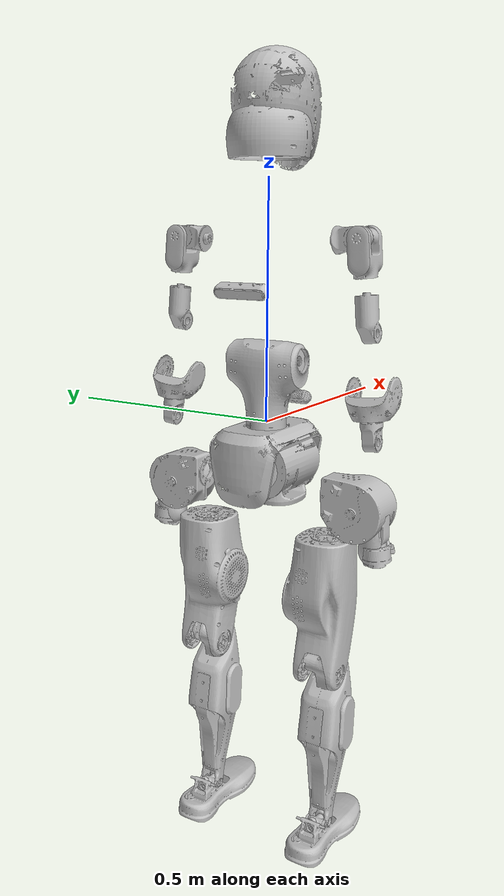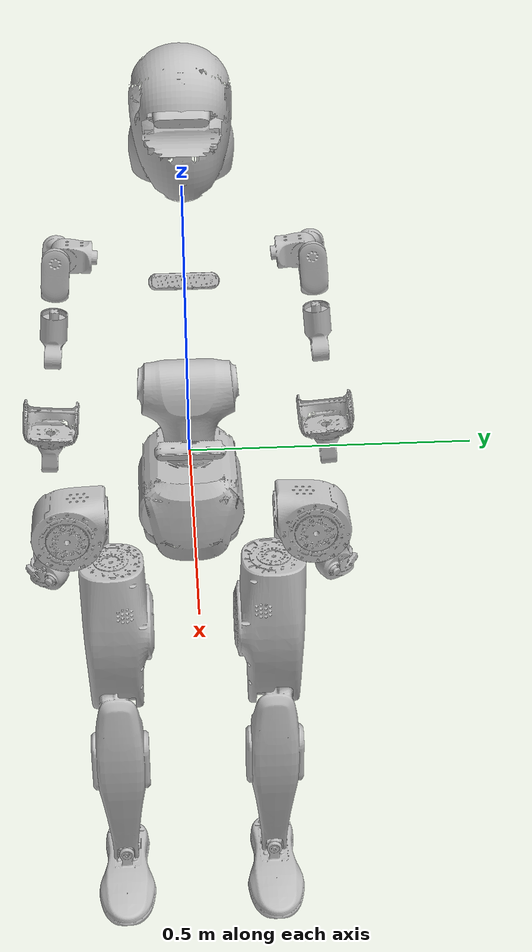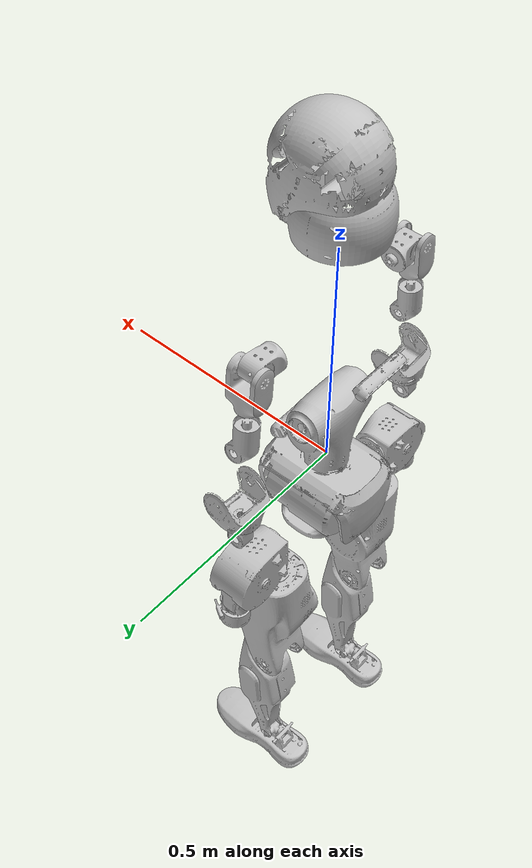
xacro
<?xml version='1.0' encoding='utf-8'?>
<robot name="tiangong2pro_urdf" xmlns:xacro="http://wiki.ros.org/xacro">
  <link name="pelvis">
    <inertial>
      <origin xyz="-0.000979 0.00068 -0.076922" rpy="0 0 0" />
      <mass value="5.639" />
      <inertia ixx="0.018304" ixy="-0.004328" ixz="6.1e-05" iyy="0.023292" iyz="6e-05" izz="0.024244" />
    </inertial>
    <visual>
      <origin xyz="0 0 0" rpy="0 0 0" />
      <geometry>
        <mesh filename="package://tiangong2pro_urdf/meshes/pelvis.STL" />
      </geometry>
      <material name="">
        <color rgba="0.752941176470588 0.752941176470588 0.752941176470588 1" />
      </material>
    </visual>
    <collision>
      <origin xyz="0 0 0" rpy="0 0 0" />
      <geometry>
        <mesh filename="package://tiangong2pro_urdf/meshes/pelvis.STL" />
      </geometry>
    </collision>
  </link>
  <link name="hip_roll_l_link">
    <inertial>
      <origin xyz="-0.001848 0.055849 -0.036017" rpy="0 0 0" />
      <mass value="0.672983" />
      <inertia ixx="0.00102" ixy="-7e-05" ixz="3.8e-05" iyy="0.003221" iyz="0.000281" izz="0.003272" />
    </inertial>
    <visual>
      <origin xyz="0 0 0" rpy="0 0 0" />
      <geometry>
        <mesh filename="package://tiangong2pro_urdf/meshes/hip_roll_l_link.STL" />
      </geometry>
      <material name="">
        <color rgba="0.752941176470588 0.752941176470588 0.752941176470588 1" />
      </material>
    </visual>
    <collision>
      <origin xyz="0 0 0" rpy="0 0 0" />
      <geometry>
        <mesh filename="package://tiangong2pro_urdf/meshes/hip_roll_l_link.STL" />
      </geometry>
    </collision>
  </link>
  <joint name="hip_roll_l_joint" type="revolute">
    <origin xyz="0 0.028 -0.0857" rpy="0 0 0" />
    <parent link="pelvis" />
    <child link="hip_roll_l_link" />
    <axis xyz="1 0 0" />
    <limit lower="-0.7853981633974483" upper="0.7853981633974483" effort="235.0" velocity="16.755160819145562" />
  </joint>
  <link name="hip_pitch_l_link">
    <inertial>
      <origin xyz="0.001081 -8.8e-05 -0.013133" rpy="0 0 0" />
      <mass value="3.951912" />
      <inertia ixx="0.010841" ixy="-2.7e-05" ixz="0.000234" iyy="0.015597" iyz="0.000123" izz="0.00934" />
    </inertial>
    <visual>
      <origin xyz="0 0 0" rpy="0 0 0" />
      <geometry>
        <mesh filename="package://tiangong2pro_urdf/meshes/hip_pitch_l_link.STL" />
      </geometry>
      <material name="">
        <color rgba="0.752941176470588 0.752941176470588 0.752941176470588 1" />
      </material>
    </visual>
    <collision>
      <origin xyz="0 0 0" rpy="0 0 0" />
      <geometry>
        <mesh filename="package://tiangong2pro_urdf/meshes/hip_pitch_l_link.STL" />
      </geometry>
    </collision>
  </link>
  <joint name="hip_pitch_l_joint" type="revolute">
    <origin xyz="0 0.122 -0.046" rpy="0 0 0" />
    <parent link="hip_roll_l_link" />
    <child link="hip_pitch_l_link" />
    <axis xyz="0 1 0" />
    <limit lower="-2.792526803190927" upper="2.0943951023931953" effort="330.0" velocity="15.707963267948966" />
  </joint>
  <link name="hip_yaw_l_link">
    <inertial>
      <origin xyz="0.004102 -0.006542 -0.121068" rpy="0 0 0" />
      <mass value="6.670795" />
      <inertia ixx="0.049573" ixy="-0.000228" ixz="-4.4e-05" iyy="0.053307" iyz="-0.001401" izz="0.017924" />
    </inertial>
    <visual>
      <origin xyz="0 0 0" rpy="0 0 0" />
      <geometry>
        <mesh filename="package://tiangong2pro_urdf/meshes/hip_yaw_l_link.STL" />
      </geometry>
      <material name="">
        <color rgba="0.752941176470588 0.752941176470588 0.752941176470588 1" />
      </material>
    </visual>
    <collision>
      <origin xyz="0 0 0" rpy="0 0 0" />
      <geometry>
        <mesh filename="package://tiangong2pro_urdf/meshes/hip_yaw_l_link.STL" />
      </geometry>
    </collision>
  </link>
  <joint name="hip_yaw_l_joint" type="revolute">
    <origin xyz="0 -0.00015 -0.0987" rpy="0 0 0" />
    <parent link="hip_pitch_l_link" />
    <child link="hip_yaw_l_link" />
    <axis xyz="0 0 1" />
    <limit lower="-1.0471975511965976" upper="1.0471975511965976" effort="235.0" velocity="16.755160819145562" />
  </joint>
  <link name="knee_pitch_l_link">
    <inertial>
      <origin xyz="0.00018 0.001915 -0.178653" rpy="0 0 0" />
      <mass value="2.312685" />
      <inertia ixx="0.030244" ixy="-1e-05" ixz="-0.002398" iyy="0.03091" iyz="-0.000689" izz="0.002922" />
    </inertial>
    <visual>
      <origin xyz="0 0 0" rpy="0 0 0" />
      <geometry>
        <mesh filename="package://tiangong2pro_urdf/meshes/knee_pitch_l_link.STL" />
      </geometry>
      <material name="">
        <color rgba="0.752941176470588 0.752941176470588 0.752941176470588 1" />
      </material>
    </visual>
    <collision>
      <origin xyz="0 0 0" rpy="0 0 0" />
      <geometry>
        <mesh filename="package://tiangong2pro_urdf/meshes/knee_pitch_l_link.STL" />
      </geometry>
    </collision>
  </link>
  <joint name="knee_pitch_l_joint" type="revolute">
    <origin xyz="0 0.00010715 -0.3013" rpy="0 0 0" />
    <parent link="hip_yaw_l_link" />
    <child link="knee_pitch_l_link" />
    <axis xyz="0 1 0" />
    <limit lower="0.0" upper="2.3911010752322315" effort="330.0" velocity="15.707963267948966" />
  </joint>
  <link name="ankle_pitch_l_link">
    <inertial>
      <origin xyz="0.0 0.0 0.0" rpy="0 0 0" />
      <mass value="0.111609" />
      <inertia ixx="1.8e-05" ixy="0.0" ixz="0.0" iyy="1.8e-05" iyz="0.0" izz="3.2e-05" />
    </inertial>
    <visual>
      <origin xyz="0 0 0" rpy="0 0 0" />
      <geometry>
        <mesh filename="package://tiangong2pro_urdf/meshes/ankle_pitch_l_link.STL" />
      </geometry>
      <material name="">
        <color rgba="0.752941176470588 0.752941176470588 0.752941176470588 1" />
      </material>
    </visual>
    <collision>
      <origin xyz="0 0 0" rpy="0 0 0" />
      <geometry>
        <mesh filename="package://tiangong2pro_urdf/meshes/ankle_pitch_l_link.STL" />
      </geometry>
    </collision>
  </link>
  <joint name="ankle_pitch_l_joint" type="revolute">
    <origin xyz="0 0 -0.4" rpy="0 0 0" />
    <parent link="knee_pitch_l_link" />
    <child link="ankle_pitch_l_link" />
    <axis xyz="0 1 0" />
    <limit lower="-1.2217304763960306" upper="0.5235987755982988" effort="55.0" velocity="14.137166941154069" />
  </joint>
  <link name="ankle_roll_l_link">
    <inertial>
      <origin xyz="0.021235 0.0 -0.032883" rpy="0 0 0" />
      <mass value="1.017381" />
      <inertia ixx="0.001028" ixy="0.0" ixz="0.000622" iyy="0.006055" iyz="0.0" izz="0.00624" />
    </inertial>
    <visual>
      <origin xyz="0 0 0" rpy="0 0 0" />
      <geometry>
        <mesh filename="package://tiangong2pro_urdf/meshes/ankle_roll_l_link.STL" />
      </geometry>
      <material name="">
        <color rgba="0.752941176470588 0.752941176470588 0.752941176470588 1" />
      </material>
    </visual>
    <collision>
      <origin xyz="0 0 0" rpy="0 0 0" />
      <geometry>
        <mesh filename="package://tiangong2pro_urdf/meshes/ankle_roll_l_link.STL" />
      </geometry>
    </collision>
  </link>
  <joint name="ankle_roll_l_joint" type="revolute">
    <origin xyz="0 0 0" rpy="0 0 0" />
    <parent link="ankle_pitch_l_link" />
    <child link="ankle_roll_l_link" />
    <axis xyz="1 0 0" />
    <limit lower="-0.5235987755982988" upper="0.5235987755982988" effort="55.0" velocity="14.137166941154069" />
  </joint>
  <link name="hip_roll_r_link">
    <inertial>
      <origin xyz="-0.001848 -0.055849 -0.036017" rpy="0 0 0" />
      <mass value="0.672983" />
      <inertia ixx="0.00102" ixy="7e-05" ixz="3.8e-05" iyy="0.003221" iyz="-0.000281" izz="0.003272" />
    </inertial>
    <visual>
      <origin xyz="0 0 0" rpy="0 0 0" />
      <geometry>
        <mesh filename="package://tiangong2pro_urdf/meshes/hip_roll_r_link.STL" />
      </geometry>
      <material name="">
        <color rgba="0.752941176470588 0.752941176470588 0.752941176470588 1" />
      </material>
    </visual>
    <collision>
      <origin xyz="0 0 0" rpy="0 0 0" />
      <geometry>
        <mesh filename="package://tiangong2pro_urdf/meshes/hip_roll_r_link.STL" />
      </geometry>
    </collision>
  </link>
  <joint name="hip_roll_r_joint" type="revolute">
    <origin xyz="0 -0.028 -0.0857" rpy="0 0 0" />
    <parent link="pelvis" />
    <child link="hip_roll_r_link" />
    <axis xyz="1 0 0" />
    <limit lower="-0.7853981633974483" upper="0.7853981633974483" effort="235.0" velocity="16.755160819145562" />
  </joint>
  <link name="hip_pitch_r_link">
    <inertial>
      <origin xyz="0.001081 8.8e-05 -0.013133" rpy="0 0 0" />
      <mass value="3.951912" />
      <inertia ixx="0.010841" ixy="2.7e-05" ixz="0.000234" iyy="0.015597" iyz="-0.000123" izz="0.00934" />
    </inertial>
    <visual>
      <origin xyz="0 0 0" rpy="0 0 0" />
      <geometry>
        <mesh filename="package://tiangong2pro_urdf/meshes/hip_pitch_r_link.STL" />
      </geometry>
      <material name="">
        <color rgba="0.752941176470588 0.752941176470588 0.752941176470588 1" />
      </material>
    </visual>
    <collision>
      <origin xyz="0 0 0" rpy="0 0 0" />
      <geometry>
        <mesh filename="package://tiangong2pro_urdf/meshes/hip_pitch_r_link.STL" />
      </geometry>
    </collision>
  </link>
  <joint name="hip_pitch_r_joint" type="revolute">
    <origin xyz="0 -0.122 -0.046" rpy="0 0 0" />
    <parent link="hip_roll_r_link" />
    <child link="hip_pitch_r_link" />
    <axis xyz="0 1 0" />
    <limit lower="-2.792526803190927" upper="2.0943951023931953" effort="330.0" velocity="15.707963267948966" />
  </joint>
  <link name="hip_yaw_r_link">
    <inertial>
      <origin xyz="0.004102 0.006542 -0.121068" rpy="0 0 0" />
      <mass value="6.670795" />
      <inertia ixx="0.049573" ixy="0.000228" ixz="-4.4e-05" iyy="0.053307" iyz="0.001401" izz="0.017924" />
    </inertial>
    <visual>
      <origin xyz="0 0 0" rpy="0 0 0" />
      <geometry>
        <mesh filename="package://tiangong2pro_urdf/meshes/hip_yaw_r_link.STL" />
      </geometry>
      <material name="">
        <color rgba="0.752941176470588 0.752941176470588 0.752941176470588 1" />
      </material>
    </visual>
    <collision>
      <origin xyz="0 0 0" rpy="0 0 0" />
      <geometry>
        <mesh filename="package://tiangong2pro_urdf/meshes/hip_yaw_r_link.STL" />
      </geometry>
    </collision>
  </link>
  <joint name="hip_yaw_r_joint" type="revolute">
    <origin xyz="0 0 -0.0987" rpy="0 0 0" />
    <parent link="hip_pitch_r_link" />
    <child link="hip_yaw_r_link" />
    <axis xyz="0 0 1" />
    <limit lower="-1.0471975511965976" upper="1.0471975511965976" effort="235.0" velocity="16.755160819145562" />
  </joint>
  <link name="knee_pitch_r_link">
    <inertial>
      <origin xyz="0.00018 -0.001915 -0.178653" rpy="0 0 0" />
      <mass value="2.312685" />
      <inertia ixx="0.030244" ixy="1e-05" ixz="-0.002398" iyy="0.03091" iyz="0.000689" izz="0.002922" />
    </inertial>
    <visual>
      <origin xyz="0 0 0" rpy="0 0 0" />
      <geometry>
        <mesh filename="package://tiangong2pro_urdf/meshes/knee_pitch_r_link.STL" />
      </geometry>
      <material name="">
        <color rgba="0.752941176470588 0.752941176470588 0.752941176470588 1" />
      </material>
    </visual>
    <collision>
      <origin xyz="0 0 0" rpy="0 0 0" />
      <geometry>
        <mesh filename="package://tiangong2pro_urdf/meshes/knee_pitch_r_link.STL" />
      </geometry>
    </collision>
  </link>
  <joint name="knee_pitch_r_joint" type="revolute">
    <origin xyz="0 9.9938E-05 -0.3013" rpy="0 0 0" />
    <parent link="hip_yaw_r_link" />
    <child link="knee_pitch_r_link" />
    <axis xyz="0 1 0" />
    <limit lower="0.0" upper="2.3911010752322315" effort="330.0" velocity="15.707963267948966" />
  </joint>
  <link name="ankle_pitch_r_link">
    <inertial>
      <origin xyz="0.0 0.0 0.0" rpy="0 0 0" />
      <mass value="0.111609" />
      <inertia ixx="1.8e-05" ixy="0.0" ixz="0.0" iyy="1.8e-05" iyz="0.0" izz="3.2e-05" />
    </inertial>
    <visual>
      <origin xyz="0 0 0" rpy="0 0 0" />
      <geometry>
        <mesh filename="package://tiangong2pro_urdf/meshes/ankle_pitch_r_link.STL" />
      </geometry>
      <material name="">
        <color rgba="0.752941176470588 0.752941176470588 0.752941176470588 1" />
      </material>
    </visual>
    <collision>
      <origin xyz="0 0 0" rpy="0 0 0" />
      <geometry>
        <mesh filename="package://tiangong2pro_urdf/meshes/ankle_pitch_r_link.STL" />
      </geometry>
    </collision>
  </link>
  <joint name="ankle_pitch_r_joint" type="revolute">
    <origin xyz="0 0.00099989 -0.4" rpy="0 0 0" />
    <parent link="knee_pitch_r_link" />
    <child link="ankle_pitch_r_link" />
    <axis xyz="0 1 0" />
    <limit lower="-1.2217304763960306" upper="0.5235987755982988" effort="55.0" velocity="14.137166941154069" />
  </joint>
  <link name="ankle_roll_r_link">
    <inertial>
      <origin xyz="0.021235 0.0 -0.032883" rpy="0 0 0" />
      <mass value="1.017381" />
      <inertia ixx="0.001028" ixy="0.0" ixz="0.000622" iyy="0.006055" iyz="0.0" izz="0.00624" />
    </inertial>
    <visual>
      <origin xyz="0 0 0" rpy="0 0 0" />
      <geometry>
        <mesh filename="package://tiangong2pro_urdf/meshes/ankle_roll_r_link.STL" />
      </geometry>
      <material name="">
        <color rgba="0.752941176470588 0.752941176470588 0.752941176470588 1" />
      </material>
    </visual>
    <collision>
      <origin xyz="0 0 0" rpy="0 0 0" />
      <geometry>
        <mesh filename="package://tiangong2pro_urdf/meshes/ankle_roll_r_link.STL" />
      </geometry>
    </collision>
  </link>
  <joint name="ankle_roll_r_joint" type="revolute">
    <origin xyz="0 0 0" rpy="0 0 0" />
    <parent link="ankle_pitch_r_link" />
    <child link="ankle_roll_r_link" />
    <axis xyz="1 0 0" />
    <limit lower="-0.5235987755982988" upper="0.5235987755982988" effort="55.0" velocity="14.137166941154069" />
  </joint>
  <link name="waist_yaw_link">
    <inertial>
      <origin xyz="-0.000568 0.00056 0.231488" rpy="0 0 0" />
      <mass value="22.0" />
      <inertia ixx="0.429034" ixy="0.000293" ixz="-0.003462" iyy="0.379055" iyz="0.000237" izz="0.177142" />
    </inertial>
    <visual>
      <origin xyz="0 0 0" rpy="0 0 0" />
      <geometry>
        <mesh filename="package://tiangong2pro_urdf/meshes/waist_yaw_link.STL" />
      </geometry>
      <material name="">
        <color rgba="0.752941176470588 0.752941176470588 0.752941176470588 1" />
      </material>
    </visual>
    <collision>
      <origin xyz="0 0 0" rpy="0 0 0" />
      <geometry>
        <mesh filename="package://tiangong2pro_urdf/meshes/waist_yaw_link.STL" />
      </geometry>
    </collision>
  </link>
  <joint name="body_yaw_joint" type="revolute">
    <origin xyz="0 0 0" rpy="0 0 0" />
    <parent link="pelvis" />
    <child link="waist_yaw_link" />
    <axis xyz="0 0 1" />
    <limit lower="-2.9670597283903604" upper="3.141592653589793" effort="91.0" velocity="9.215338450530059" />
  </joint>
  <link name="head_yaw_link">
    <inertial>
      <origin xyz="-0.000202 0.000454 0.007248" rpy="0 0 0" />
      <mass value="0.088397" />
      <inertia ixx="9.5e-05" ixy="-1e-06" ixz="-3e-06" iyy="7.6e-05" iyz="-3e-06" izz="0.000106" />
    </inertial>
    <visual>
      <origin xyz="0 0 0" rpy="0 0 0" />
      <geometry>
        <mesh filename="package://tiangong2pro_urdf/meshes/head_yaw_link.STL" />
      </geometry>
      <material name="">
        <color rgba="0.752941176470588 0.752941176470588 0.752941176470588 1" />
      </material>
    </visual>
    <collision>
      <origin xyz="0 0 0" rpy="0 0 0" />
      <geometry>
        <mesh filename="package://tiangong2pro_urdf/meshes/head_yaw_link.STL" />
      </geometry>
    </collision>
  </link>
  <joint name="head_yaw_joint" type="revolute">
    <origin xyz="-0.002 0 0.56508" rpy="0 0 0" />
    <parent link="waist_yaw_link" />
    <child link="head_yaw_link" />
    <axis xyz="0 0 1" />
    <limit lower="-1.5707963267948966" upper="1.5707963267948966" effort="6.3" velocity="7.5398223686155035" />
  </joint>
  <link name="head_pitch_link">
    <inertial>
      <origin xyz="-0.000274 0.004118 2.3e-05" rpy="0 0 0" />
      <mass value="0.23046" />
      <inertia ixx="9.2e-05" ixy="1e-06" ixz="-1e-06" iyy="5.4e-05" iyz="0.0" izz="9.5e-05" />
    </inertial>
    <visual>
      <origin xyz="0 0 0" rpy="0 0 0" />
      <geometry>
        <mesh filename="package://tiangong2pro_urdf/meshes/head_pitch_link.STL" />
      </geometry>
      <material name="">
        <color rgba="0.752941176470588 0.752941176470588 0.752941176470588 1" />
      </material>
    </visual>
    <collision>
      <origin xyz="0 0 0" rpy="0 0 0" />
      <geometry>
        <mesh filename="package://tiangong2pro_urdf/meshes/head_pitch_link.STL" />
      </geometry>
    </collision>
  </link>
  <joint name="head_pitch_joint" type="revolute">
    <origin xyz="0.01455 0 0.0304" rpy="0 0.2618 0" />
    <parent link="head_yaw_link" />
    <child link="head_pitch_link" />
    <axis xyz="0 1 0" />
    <limit lower="-0.4363323129985824" upper="0.4363323129985824" effort="6.3" velocity="7.5398223686155035" />
  </joint>
  <link name="head_roll_link">
    <inertial>
      <origin xyz="0.022467 0.001208 0.053952" rpy="0 0 0" />
      <mass value="0.844627" />
      <inertia ixx="0.00235" ixy="3.8e-05" ixz="0.000436" iyy="0.003365" iyz="6e-06" izz="0.002875" />
    </inertial>
    <visual>
      <origin xyz="0 0 0" rpy="0 0 0" />
      <geometry>
        <mesh filename="package://tiangong2pro_urdf/meshes/head_roll_link.STL" />
      </geometry>
      <material name="">
        <color rgba="0.752941176470588 0.752941176470588 0.752941176470588 1" />
      </material>
    </visual>
    <collision>
      <origin xyz="0 0 0" rpy="0 0 0" />
      <geometry>
        <mesh filename="package://tiangong2pro_urdf/meshes/head_roll_link.STL" />
      </geometry>
    </collision>
  </link>
  <joint name="head_roll_joint" type="revolute">
    <origin xyz="0 0 0" rpy="0 0 0" />
    <parent link="head_pitch_link" />
    <child link="head_roll_link" />
    <axis xyz="1 0 0" />
    <limit lower="-0.4537856055185257" upper="0.4537856055185257" effort="6.3" velocity="7.5398223686155035" />
  </joint>
  <link name="camera_head_link">
    <inertial>
      <origin xyz="0.010986 -0.000307 -0.016475" rpy="0 0 0" />
      <mass value="0.1" />
      <inertia ixx="1.6e-05" ixy="0.0" ixz="0.0" iyy="8e-05" iyz="0.0" izz="7.7e-05" />
    </inertial>
    <visual>
      <origin xyz="0 0 0" rpy="0 0 0" />
      <geometry>
        <mesh filename="package://tiangong2pro_urdf/meshes/camera_head_link.STL" />
      </geometry>
      <material name="">
        <color rgba="0.752941176470588 0.752941176470588 0.752941176470588 1" />
      </material>
    </visual>
    <collision>
      <origin xyz="0 0 0" rpy="0 0 0" />
      <geometry>
        <mesh filename="package://tiangong2pro_urdf/meshes/camera_head_link.STL" />
      </geometry>
    </collision>
  </link>
  <joint name="camera_head_joint" type="fixed">
    <origin xyz="0.075191 0.010935 0.074436" rpy="-1.8326 0 -1.5708" />
    <parent link="head_roll_link" />
    <child link="camera_head_link" />
    <axis xyz="0 0 0" />
  </joint>
  <link name="shoulder_pitch_l_link">
    <inertial>
      <origin xyz="0.007494 0.064184 -2e-05" rpy="0 0 0" />
      <mass value="1.032698" />
      <inertia ixx="0.001025" ixy="-2.7e-05" ixz="-1e-06" iyy="0.001078" iyz="0.0" izz="0.001247" />
    </inertial>
    <visual>
      <origin xyz="0 0 0" rpy="0 0 0" />
      <geometry>
        <mesh filename="package://tiangong2pro_urdf/meshes/shoulder_pitch_l_link.STL" />
      </geometry>
      <material name="">
        <color rgba="0.752941176470588 0.752941176470588 0.752941176470588 1" />
      </material>
    </visual>
    <collision>
      <origin xyz="0 0 0" rpy="0 0 0" />
      <geometry>
        <mesh filename="package://tiangong2pro_urdf/meshes/shoulder_pitch_l_link.STL" />
      </geometry>
    </collision>
  </link>
  <joint name="shoulder_pitch_l_joint" type="revolute">
    <origin xyz="0 0.1444 0.37712" rpy="0.087266 0 0" />
    <parent link="waist_yaw_link" />
    <child link="shoulder_pitch_l_link" />
    <axis xyz="0 1 0" />
    <limit lower="-2.9670597283903604" upper="2.9670597283903604" effort="91.0" velocity="9.215338450530059" />
  </joint>
  <link name="shoulder_roll_l_link">
    <inertial>
      <origin xyz="0.002389 0.002259 -0.048236" rpy="0 0 0" />
      <mass value="0.440997" />
      <inertia ixx="0.001001" ixy="-4e-06" ixz="-2.5e-05" iyy="0.001313" iyz="-1.4e-05" izz="0.000911" />
    </inertial>
    <visual>
      <origin xyz="0 0 0" rpy="0 0 0" />
      <geometry>
        <mesh filename="package://tiangong2pro_urdf/meshes/shoulder_roll_l_link.STL" />
      </geometry>
      <material name="">
        <color rgba="0.752941176470588 0.752941176470588 0.752941176470588 1" />
      </material>
    </visual>
    <collision>
      <origin xyz="0 0 0" rpy="0 0 0" />
      <geometry>
        <mesh filename="package://tiangong2pro_urdf/meshes/shoulder_roll_l_link.STL" />
      </geometry>
    </collision>
  </link>
  <joint name="shoulder_roll_l_joint" type="revolute">
    <origin xyz="0 0.068 0" rpy="0 0 0" />
    <parent link="shoulder_pitch_l_link" />
    <child link="shoulder_roll_l_link" />
    <axis xyz="1 0 0" />
    <limit lower="-0.2617993877991494" upper="2.6179938779914944" effort="95.0" velocity="3.979350694547071" />
  </joint>
  <link name="shoulder_yaw_l_link">
    <inertial>
      <origin xyz="0.008319 0.002686 -0.112525" rpy="0 0 0" />
      <mass value="1.365033" />
      <inertia ixx="0.009637" ixy="-5.7e-05" ixz="0.00095" iyy="0.0096" iyz="0.000339" izz="0.001331" />
    </inertial>
    <visual>
      <origin xyz="0 0 0" rpy="0 0 0" />
      <geometry>
        <mesh filename="package://tiangong2pro_urdf/meshes/shoulder_yaw_l_link.STL" />
      </geometry>
      <material name="">
        <color rgba="0.752941176470588 0.752941176470588 0.752941176470588 1" />
      </material>
    </visual>
    <collision>
      <origin xyz="0 0 0" rpy="0 0 0" />
      <geometry>
        <mesh filename="package://tiangong2pro_urdf/meshes/shoulder_yaw_l_link.STL" />
      </geometry>
    </collision>
  </link>
  <joint name="shoulder_yaw_l_joint" type="revolute">
    <origin xyz="0 0 -0.1025" rpy="0 0 0" />
    <parent link="shoulder_roll_l_link" />
    <child link="shoulder_yaw_l_link" />
    <axis xyz="0 0 1" />
    <limit lower="-2.9670597283903604" upper="2.9670597283903604" effort="35.0" velocity="5.235987755982989" />
  </joint>
  <link name="elbow_pitch_l_link">
    <inertial>
      <origin xyz="-0.014694 -7.2e-05 -0.026081" rpy="0 0 0" />
      <mass value="0.246311" />
      <inertia ixx="0.000381" ixy="1e-06" ixz="-1.2e-05" iyy="0.000222" iyz="2e-06" izz="0.000401" />
    </inertial>
    <visual>
      <origin xyz="0 0 0" rpy="0 0 0" />
      <geometry>
        <mesh filename="package://tiangong2pro_urdf/meshes/elbow_pitch_l_link.STL" />
      </geometry>
      <material name="">
        <color rgba="0.752941176470588 0.752941176470588 0.752941176470588 1" />
      </material>
    </visual>
    <collision>
      <origin xyz="0 0 0" rpy="0 0 0" />
      <geometry>
        <mesh filename="package://tiangong2pro_urdf/meshes/elbow_pitch_l_link.STL" />
      </geometry>
    </collision>
  </link>
  <joint name="elbow_pitch_l_joint" type="revolute">
    <origin xyz="0.02 0 -0.1975" rpy="0 0 0" />
    <parent link="shoulder_yaw_l_link" />
    <child link="elbow_pitch_l_link" />
    <axis xyz="0 1 0" />
    <limit lower="-2.6179938779914944" upper="0.2617993877991494" effort="35.0" velocity="5.235987755982989" />
  </joint>
  <link name="elbow_yaw_l_link">
    <inertial>
      <origin xyz="0.000158 0.001503 -0.069535" rpy="0 0 0" />
      <mass value="0.986828" />
      <inertia ixx="0.003108" ixy="-1e-06" ixz="8e-06" iyy="0.003035" iyz="8.9e-05" izz="0.00058" />
    </inertial>
    <visual>
      <origin xyz="0 0 0" rpy="0 0 0" />
      <geometry>
        <mesh filename="package://tiangong2pro_urdf/meshes/elbow_yaw_l_link.STL" />
      </geometry>
      <material name="">
        <color rgba="0.752941176470588 0.752941176470588 0.752941176470588 1" />
      </material>
    </visual>
    <collision>
      <origin xyz="0 0 0" rpy="0 0 0" />
      <geometry>
        <mesh filename="package://tiangong2pro_urdf/meshes/elbow_yaw_l_link.STL" />
      </geometry>
    </collision>
  </link>
  <joint name="elbow_yaw_l_joint" type="revolute">
    <origin xyz="-0.02 0 -0.0543" rpy="0 0 0" />
    <parent link="elbow_pitch_l_link" />
    <child link="elbow_yaw_l_link" />
    <axis xyz="0 0 1" />
    <limit lower="-2.9670597283903604" upper="2.9670597283903604" effort="24.0" velocity="10.471975511965978" />
  </joint>
  <link name="wrist_pitch_l_link">
    <inertial>
      <origin xyz="0.005362 0.00064 -0.018812" rpy="0 0 0" />
      <mass value="0.262007" />
      <inertia ixx="7.1e-05" ixy="-3e-06" ixz="-2e-06" iyy="0.000112" iyz="-3e-06" izz="0.000111" />
    </inertial>
    <visual>
      <origin xyz="0 0 0" rpy="0 0 0" />
      <geometry>
        <mesh filename="package://tiangong2pro_urdf/meshes/wrist_pitch_l_link.STL" />
      </geometry>
      <material name="">
        <color rgba="0.752941176470588 0.752941176470588 0.752941176470588 1" />
      </material>
    </visual>
    <collision>
      <origin xyz="0 0 0" rpy="0 0 0" />
      <geometry>
        <mesh filename="package://tiangong2pro_urdf/meshes/wrist_pitch_l_link.STL" />
      </geometry>
    </collision>
  </link>
  <joint name="wrist_pitch_l_joint" type="revolute">
    <origin xyz="0 0 -0.1887" rpy="0 0 0" />
    <parent link="elbow_yaw_l_link" />
    <child link="wrist_pitch_l_link" />
    <axis xyz="0 1 0" />
    <limit lower="-0.7853981633974483" upper="1.0471975511965976" effort="6.3" velocity="7.5398223686155035" />
  </joint>
  <link name="wrist_roll_l_link">
    <inertial>
      <origin xyz="0.000801 8.4e-05 -0.029302" rpy="0 0 0" />
      <mass value="0.131751" />
      <inertia ixx="6.9e-05" ixy="0.0" ixz="-1e-06" iyy="0.000116" iyz="0.0" izz="0.00011" />
    </inertial>
    <visual>
      <origin xyz="0 0 0" rpy="0 0 0" />
      <geometry>
        <mesh filename="package://tiangong2pro_urdf/meshes/wrist_roll_l_link.STL" />
      </geometry>
      <material name="">
        <color rgba="0.752941176470588 0.752941176470588 0.752941176470588 1" />
      </material>
    </visual>
    <collision>
      <origin xyz="0 0 0" rpy="0 0 0" />
      <geometry>
        <mesh filename="package://tiangong2pro_urdf/meshes/wrist_roll_l_link.STL" />
      </geometry>
    </collision>
  </link>
  <joint name="wrist_roll_l_joint" type="revolute">
    <origin xyz="0 0 -0.02" rpy="0 0 0" />
    <parent link="wrist_pitch_l_link" />
    <child link="wrist_roll_l_link" />
    <axis xyz="1 0 0" />
    <limit lower="-1.6580627893946132" upper="1.3089969389957472" effort="6.3" velocity="7.5398223686155035" />
  </joint>
  <link name="left_tcp_link">
    <inertial>
      <origin xyz="0.000415 0.000651 0.017052" rpy="0 0 0" />
      <mass value="0.218186" />
      <inertia ixx="8.6e-05" ixy="-2e-06" ixz="-1e-06" iyy="8.4e-05" iyz="-1e-06" izz="0.000109" />
    </inertial>
    <visual>
      <origin xyz="0 0 0" rpy="0 0 0" />
      <geometry>
        <mesh filename="package://tiangong2pro_urdf/meshes/left_tcp_link.STL" />
      </geometry>
      <material name="">
        <color rgba="0.752941176470588 0.752941176470588 0.752941176470588 1" />
      </material>
    </visual>
    <collision>
      <origin xyz="0 0 0" rpy="0 0 0" />
      <geometry>
        <mesh filename="package://tiangong2pro_urdf/meshes/left_tcp_link.STL" />
      </geometry>
    </collision>
  </link>
  <joint name="left_tcp_joint" type="fixed">
    <origin xyz="0 0 -0.0848" rpy="0 0 0" />
    <parent link="wrist_roll_l_link" />
    <child link="left_tcp_link" />
    <axis xyz="0 0 0" />
  </joint>
  <link name="shoulder_pitch_r_link">
    <inertial>
      <origin xyz="0.007494 -0.064184 -2e-05" rpy="0 0 0" />
      <mass value="1.032698" />
      <inertia ixx="0.001025" ixy="2.7e-05" ixz="-1e-06" iyy="0.001078" iyz="0.0" izz="0.001247" />
    </inertial>
    <visual>
      <origin xyz="0 0 0" rpy="0 0 0" />
      <geometry>
        <mesh filename="package://tiangong2pro_urdf/meshes/shoulder_pitch_r_link.STL" />
      </geometry>
      <material name="">
        <color rgba="0.752941176470588 0.752941176470588 0.752941176470588 1" />
      </material>
    </visual>
    <collision>
      <origin xyz="0 0 0" rpy="0 0 0" />
      <geometry>
        <mesh filename="package://tiangong2pro_urdf/meshes/shoulder_pitch_r_link.STL" />
      </geometry>
    </collision>
  </link>
  <joint name="shoulder_pitch_r_joint" type="revolute">
    <origin xyz="0 -0.1444 0.37712" rpy="-0.087266 0 0" />
    <parent link="waist_yaw_link" />
    <child link="shoulder_pitch_r_link" />
    <axis xyz="0 1 0" />
    <limit lower="-2.9670597283903604" upper="2.9670597283903604" effort="91.0" velocity="9.215338450530059" />
  </joint>
  <link name="shoulder_roll_r_link">
    <inertial>
      <origin xyz="0.002389 -0.002259 -0.048236" rpy="0 0 0" />
      <mass value="0.440997" />
      <inertia ixx="0.001001" ixy="4e-06" ixz="-2.5e-05" iyy="0.001313" iyz="1.4e-05" izz="0.000911" />
    </inertial>
    <visual>
      <origin xyz="0 0 0" rpy="0 0 0" />
      <geometry>
        <mesh filename="package://tiangong2pro_urdf/meshes/shoulder_roll_r_link.STL" />
      </geometry>
      <material name="">
        <color rgba="0.752941176470588 0.752941176470588 0.752941176470588 1" />
      </material>
    </visual>
    <collision>
      <origin xyz="0 0 0" rpy="0 0 0" />
      <geometry>
        <mesh filename="package://tiangong2pro_urdf/meshes/shoulder_roll_r_link.STL" />
      </geometry>
    </collision>
  </link>
  <joint name="shoulder_roll_r_joint" type="revolute">
    <origin xyz="0 -0.068 0" rpy="0 0 0" />
    <parent link="shoulder_pitch_r_link" />
    <child link="shoulder_roll_r_link" />
    <axis xyz="1 0 0" />
    <limit lower="-2.6179938779914944" upper="0.2617993877991494" effort="95.0" velocity="3.979350694547071" />
  </joint>
  <link name="shoulder_yaw_r_link">
    <inertial>
      <origin xyz="0.008319 -0.002686 -0.112525" rpy="0 0 0" />
      <mass value="1.365033" />
      <inertia ixx="0.009637" ixy="5.7e-05" ixz="0.00095" iyy="0.0096" iyz="-0.000339" izz="0.001331" />
    </inertial>
    <visual>
      <origin xyz="0 0 0" rpy="0 0 0" />
      <geometry>
        <mesh filename="package://tiangong2pro_urdf/meshes/shoulder_yaw_r_link.STL" />
      </geometry>
      <material name="">
        <color rgba="0.752941176470588 0.752941176470588 0.752941176470588 1" />
      </material>
    </visual>
    <collision>
      <origin xyz="0 0 0" rpy="0 0 0" />
      <geometry>
        <mesh filename="package://tiangong2pro_urdf/meshes/shoulder_yaw_r_link.STL" />
      </geometry>
    </collision>
  </link>
  <joint name="shoulder_yaw_r_joint" type="revolute">
    <origin xyz="0 0 -0.1025" rpy="0 0 0" />
    <parent link="shoulder_roll_r_link" />
    <child link="shoulder_yaw_r_link" />
    <axis xyz="0 0 1" />
    <limit lower="-2.9670597283903604" upper="2.9670597283903604" effort="35.0" velocity="5.235987755982989" />
  </joint>
  <link name="elbow_pitch_r_link">
    <inertial>
      <origin xyz="-0.014694 7.2e-05 -0.026081" rpy="0 0 0" />
      <mass value="0.246311" />
      <inertia ixx="0.000381" ixy="-1e-06" ixz="-1.2e-05" iyy="0.000222" iyz="-2e-06" izz="0.000401" />
    </inertial>
    <visual>
      <origin xyz="0 0 0" rpy="0 0 0" />
      <geometry>
        <mesh filename="package://tiangong2pro_urdf/meshes/elbow_pitch_r_link.STL" />
      </geometry>
      <material name="">
        <color rgba="0.752941176470588 0.752941176470588 0.752941176470588 1" />
      </material>
    </visual>
    <collision>
      <origin xyz="0 0 0" rpy="0 0 0" />
      <geometry>
        <mesh filename="package://tiangong2pro_urdf/meshes/elbow_pitch_r_link.STL" />
      </geometry>
    </collision>
  </link>
  <joint name="elbow_pitch_r_joint" type="revolute">
    <origin xyz="0.02 0 -0.1975" rpy="0 0 0" />
    <parent link="shoulder_yaw_r_link" />
    <child link="elbow_pitch_r_link" />
    <axis xyz="0 1 0" />
    <limit lower="-2.6179938779914944" upper="0.2617993877991494" effort="35.0" velocity="5.235987755982989" />
  </joint>
  <link name="elbow_yaw_r_link">
    <inertial>
      <origin xyz="0.000158 -0.001503 -0.069535" rpy="0 0 0" />
      <mass value="0.986828" />
      <inertia ixx="0.003108" ixy="1e-06" ixz="8e-06" iyy="0.003035" iyz="-8.9e-05" izz="0.00058" />
    </inertial>
    <visual>
      <origin xyz="0 0 0" rpy="0 0 0" />
      <geometry>
        <mesh filename="package://tiangong2pro_urdf/meshes/elbow_yaw_r_link.STL" />
      </geometry>
      <material name="">
        <color rgba="0.752941176470588 0.752941176470588 0.752941176470588 1" />
      </material>
    </visual>
    <collision>
      <origin xyz="0 0 0" rpy="0 0 0" />
      <geometry>
        <mesh filename="package://tiangong2pro_urdf/meshes/elbow_yaw_r_link.STL" />
      </geometry>
    </collision>
  </link>
  <joint name="elbow_yaw_r_joint" type="revolute">
    <origin xyz="-0.02 0 -0.0543" rpy="0 0 0" />
    <parent link="elbow_pitch_r_link" />
    <child link="elbow_yaw_r_link" />
    <axis xyz="0 0 1" />
    <limit lower="-2.9670597283903604" upper="2.9670597283903604" effort="24.0" velocity="10.471975511965978" />
  </joint>
  <link name="wrist_pitch_r_link">
    <inertial>
      <origin xyz="0.005362 -0.00064 -0.018812" rpy="0 0 0" />
      <mass value="0.262007" />
      <inertia ixx="7.1e-05" ixy="3e-06" ixz="-2e-06" iyy="0.000112" iyz="3e-06" izz="0.000111" />
    </inertial>
    <visual>
      <origin xyz="0 0 0" rpy="0 0 0" />
      <geometry>
        <mesh filename="package://tiangong2pro_urdf/meshes/wrist_pitch_r_link.STL" />
      </geometry>
      <material name="">
        <color rgba="0.752941176470588 0.752941176470588 0.752941176470588 1" />
      </material>
    </visual>
    <collision>
      <origin xyz="0 0 0" rpy="0 0 0" />
      <geometry>
        <mesh filename="package://tiangong2pro_urdf/meshes/wrist_pitch_r_link.STL" />
      </geometry>
    </collision>
  </link>
  <joint name="wrist_pitch_r_joint" type="revolute">
    <origin xyz="0 0 -0.1887" rpy="0 0 0" />
    <parent link="elbow_yaw_r_link" />
    <child link="wrist_pitch_r_link" />
    <axis xyz="0 1 0" />
    <limit lower="-0.7853981633974483" upper="1.0471975511965976" effort="6.3" velocity="7.5398223686155035" />
  </joint>
  <link name="wrist_roll_r_link">
    <inertial>
      <origin xyz="0.000801 -8.4e-05 -0.029302" rpy="0 0 0" />
      <mass value="0.131751" />
      <inertia ixx="6.9e-05" ixy="0.0" ixz="-1e-06" iyy="0.000116" iyz="0.0" izz="0.00011" />
    </inertial>
    <visual>
      <origin xyz="0 0 0" rpy="0 0 0" />
      <geometry>
        <mesh filename="package://tiangong2pro_urdf/meshes/wrist_roll_r_link.STL" />
      </geometry>
      <material name="">
        <color rgba="0.752941176470588 0.752941176470588 0.752941176470588 1" />
      </material>
    </visual>
    <collision>
      <origin xyz="0 0 0" rpy="0 0 0" />
      <geometry>
        <mesh filename="package://tiangong2pro_urdf/meshes/wrist_roll_r_link.STL" />
      </geometry>
    </collision>
  </link>
  <joint name="wrist_roll_r_joint" type="revolute">
    <origin xyz="0 0 -0.02" rpy="0 0 0" />
    <parent link="wrist_pitch_r_link" />
    <child link="wrist_roll_r_link" />
    <axis xyz="1 0 0" />
    <limit lower="-1.3089969389957472" upper="1.6580627893946132" effort="6.3" velocity="7.5398223686155035" />
  </joint>
  <link name="right_tcp_link">
    <inertial>
      <origin xyz="0.000415 -0.000651 0.017052" rpy="0 0 0" />
      <mass value="0.218186" />
      <inertia ixx="8.6e-05" ixy="2e-06" ixz="-1e-06" iyy="8.4e-05" iyz="1e-06" izz="0.000109" />
    </inertial>
    <visual>
      <origin xyz="0 0 0" rpy="0 0 0" />
      <geometry>
        <mesh filename="package://tiangong2pro_urdf/meshes/right_tcp_link.STL" />
      </geometry>
      <material name="">
        <color rgba="0.752941176470588 0.752941176470588 0.752941176470588 1" />
      </material>
    </visual>
    <collision>
      <origin xyz="0 0 0" rpy="0 0 0" />
      <geometry>
        <mesh filename="package://tiangong2pro_urdf/meshes/right_tcp_link.STL" />
      </geometry>
    </collision>
  </link>
  <joint name="right_tcp_joint" type="fixed">
    <origin xyz="0 0 -0.0848" rpy="0 0 0" />
    <parent link="wrist_roll_r_link" />
    <child link="right_tcp_link" />
    <axis xyz="0 0 0" />
  </joint>
  <link name="camera_body_front_link">
    <inertial>
      <origin xyz="0.023316 0.000241 -0.013373" rpy="0 0 0" />
      <mass value="0.1" />
      <inertia ixx="1.5e-05" ixy="1e-06" ixz="-1e-06" iyy="0.000127" iyz="0.0" izz="0.000127" />
    </inertial>
    <visual>
      <origin xyz="0 0 0" rpy="0 0 0" />
      <geometry>
        <mesh filename="package://tiangong2pro_urdf/meshes/camera_body_front_link.STL" />
      </geometry>
      <material name="">
        <color rgba="0.752941176470588 0.752941176470588 0.752941176470588 1" />
      </material>
    </visual>
    <collision>
      <origin xyz="0 0 0" rpy="0 0 0" />
      <geometry>
        <mesh filename="package://tiangong2pro_urdf/meshes/camera_body_front_link.STL" />
      </geometry>
    </collision>
  </link>
  <joint name="camera_body_front_joint" type="fixed">
    <origin xyz="0.090583 0.02375 0.039012" rpy="-2.1468 0 -1.5708" />
    <parent link="waist_yaw_link" />
    <child link="camera_body_front_link" />
    <axis xyz="0 0 0" />
  </joint>
  <link name="camera_body_back_link">
    <inertial>
      <origin xyz="0.023316 0.000241 -0.013373" rpy="0 0 0" />
      <mass value="0.1" />
      <inertia ixx="1.5e-05" ixy="1e-06" ixz="-1e-06" iyy="0.000127" iyz="0.0" izz="0.000127" />
    </inertial>
    <visual>
      <origin xyz="0 0 0" rpy="0 0 0" />
      <geometry>
        <mesh filename="package://tiangong2pro_urdf/meshes/camera_body_back_link.STL" />
      </geometry>
      <material name="">
        <color rgba="0.752941176470588 0.752941176470588 0.752941176470588 1" />
      </material>
    </visual>
    <collision>
      <origin xyz="0 0 0" rpy="0 0 0" />
      <geometry>
        <mesh filename="package://tiangong2pro_urdf/meshes/camera_body_back_link.STL" />
      </geometry>
    </collision>
  </link>
  <joint name="camera_body_back_joint" type="fixed">
    <origin xyz="-0.11363 0.02375 0.2746" rpy="2.0071 0 -1.5708" />
    <parent link="waist_yaw_link" />
    <child link="camera_body_back_link" />
    <axis xyz="0 0 0" />
  </joint>
  <link name="imu_link">
    <inertial>
      <origin xyz="-0.006331 -0.007725 -0.008045" rpy="0 0 0" />
      <mass value="0.02" />
      <inertia ixx="2e-06" ixy="0.0" ixz="0.0" iyy="3e-06" iyz="0.0" izz="4e-06" />
    </inertial>
    <visual>
      <origin xyz="0 0 0" rpy="0 0 0" />
      <geometry>
        <mesh filename="package://tiangong2pro_urdf/meshes/imu_link.STL" />
      </geometry>
      <material name="">
        <color rgba="0.752941176470588 0.752941176470588 0.752941176470588 1" />
      </material>
    </visual>
    <collision>
      <origin xyz="0 0 0" rpy="0 0 0" />
      <geometry>
        <mesh filename="package://tiangong2pro_urdf/meshes/imu_link.STL" />
      </geometry>
    </collision>
  </link>
  <joint name="imu_joint" type="fixed">
    <origin xyz="0.0499 -0.0358 -0.03194" rpy="0 0 0" />
    <parent link="pelvis" />
    <child link="imu_link" />
    <axis xyz="0 0 0" />
  </joint>
</robot>
